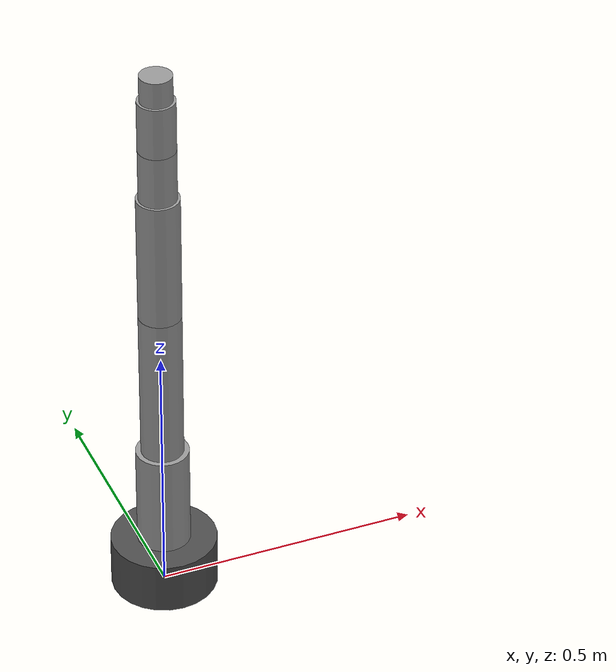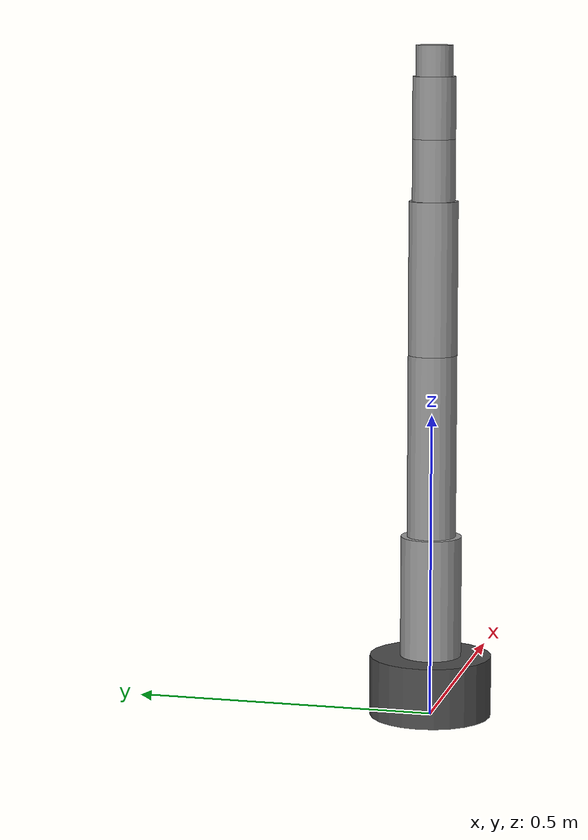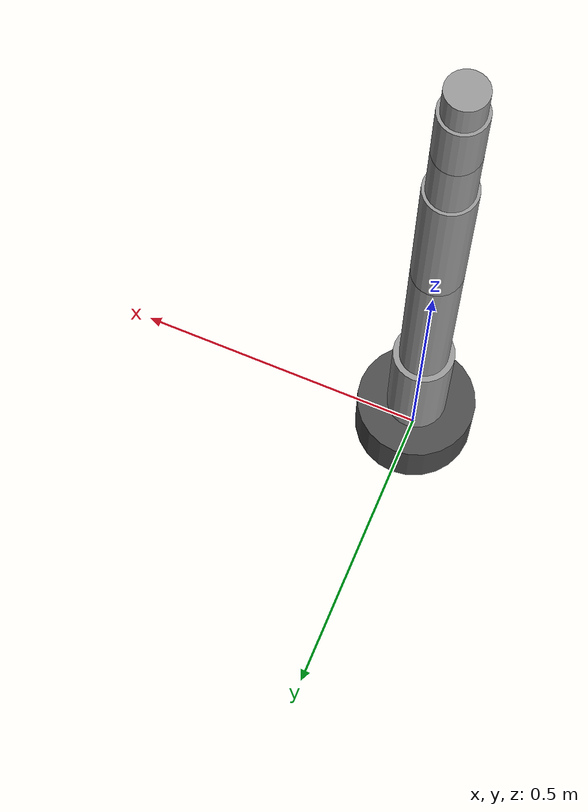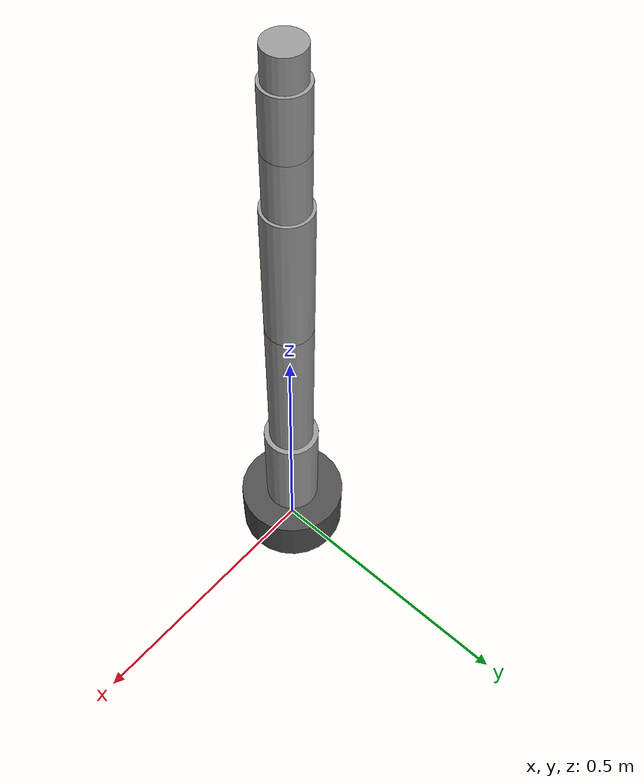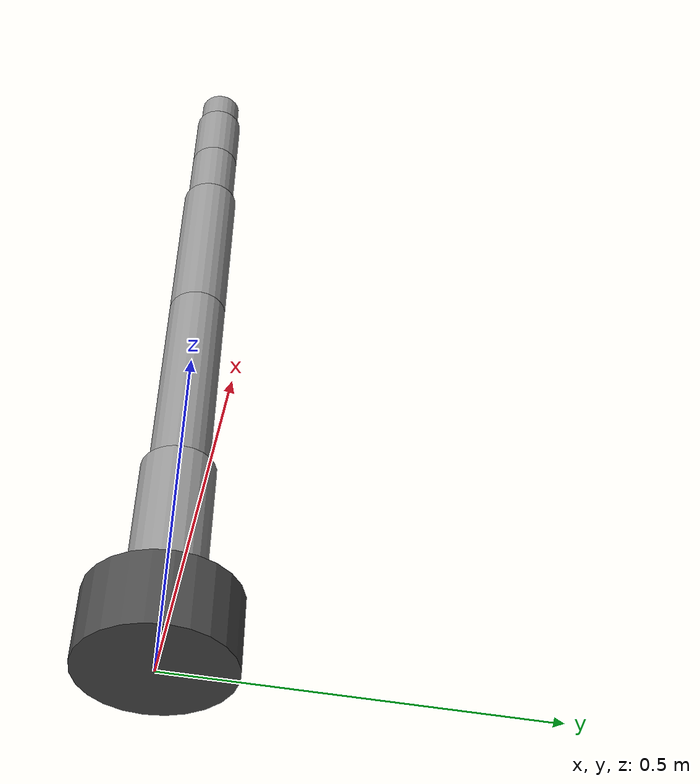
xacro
<?xml version="1.0"?>
<robot name="my_arm" xmlns:xacro="http://www.ros.org/wiki/xacro">

  <xacro:include filename="$(find my_arm_description)/urdf/arm.macro.xacro"/>

  <!-- world 是惯例的 fixed 起點(MoveIt scene 用) -->
  <link name="world"/>

  <!-- 底座(不算 DOF,fixed joint 接到 world) -->
  <joint name="world_to_base" type="fixed">
    <parent link="world"/>
    <child link="base_link"/>
    <origin xyz="0 0 0" rpy="0 0 0"/>
  </joint>

  <link name="base_link">
    <visual>
      <origin xyz="0 0 0.05" rpy="0 0 0"/>
      <geometry>
        <cylinder length="0.1" radius="0.1"/>
      </geometry>
      <material name="dark_grey">
        <color rgba="0.3 0.3 0.3 1.0"/>
      </material>
    </visual>
    <collision>
      <origin xyz="0 0 0.05" rpy="0 0 0"/>
      <geometry>
        <cylinder length="0.1" radius="0.1"/>
      </geometry>
    </collision>
    <inertial>
      <mass value="2.0"/>
      <inertia ixx="0.01" ixy="0" ixz="0" iyy="0.01" iyz="0" izz="0.01"/>
    </inertial>
  </link>

  <!-- 六個 DOF:用 macro 一次寫一個 link+joint -->
  <!--   j1: shoulder pan   (z)  -->
  <xacro:arm_link name="link_1" parent="base_link"
                  length="0.20" radius="0.05"
                  axis="0 0 1" origin_xyz="0 0 0.10"
                  lower="-3.14"  upper="3.14"/>

  <!--   j2: shoulder lift  (y)  -->
  <xacro:arm_link name="link_2" parent="link_1"
                  length="0.30" radius="0.04"
                  axis="0 1 0" origin_xyz="0 0 0.20"
                  lower="-1.57"  upper="1.57"/>

  <!--   j3: elbow          (y)  -->
  <xacro:arm_link name="link_3" parent="link_2"
                  length="0.25" radius="0.04"
                  axis="0 1 0" origin_xyz="0 0 0.30"
                  lower="-2.50"  upper="2.50"/>

  <!--   j4: wrist roll     (z)  -->
  <xacro:arm_link name="link_4" parent="link_3"
                  length="0.10" radius="0.035"
                  axis="0 0 1" origin_xyz="0 0 0.25"
                  lower="-3.14"  upper="3.14"/>

  <!--   j5: wrist pitch    (y)  -->
  <xacro:arm_link name="link_5" parent="link_4"
                  length="0.10" radius="0.035"
                  axis="0 1 0" origin_xyz="0 0 0.10"
                  lower="-1.57"  upper="1.57"/>

  <!--   j6: tool roll      (z)  -->
  <xacro:arm_link name="link_6" parent="link_5"
                  length="0.05" radius="0.03"
                  axis="0 0 1" origin_xyz="0 0 0.10"
                  lower="-3.14"  upper="3.14"/>

  <!-- tool0:習慣命名,工具(夾爪/吸盤)裝這裡 -->
  <joint name="link_6_to_tool0" type="fixed">
    <parent link="link_6"/>
    <child link="tool0"/>
    <origin xyz="0 0 0.05" rpy="0 0 0"/>
  </joint>
  <link name="tool0"/>

</robot>

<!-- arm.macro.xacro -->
<robot xmlns:xacro="http://www.ros.org/wiki/xacro">

  <xacro:macro name="arm_link"
               params="name parent length radius axis origin_xyz lower upper">

    <!-- joint:把這個 link 接到 parent -->
    <joint name="${name}_joint" type="revolute">
      <parent link="${parent}"/>
      <child link="${name}"/>
      <origin xyz="${origin_xyz}" rpy="0 0 0"/>
      <axis xyz="${axis}"/>
      <limit lower="${lower}" upper="${upper}" effort="100" velocity="1.5"/>
      <dynamics damping="0.1" friction="0.1"/>
    </joint>

    <!-- link:圓柱形 visual + collision + 慣量(MoveIt / Gazebo 都需要) -->
    <link name="${name}">
      <visual>
        <origin xyz="0 0 ${length/2}" rpy="0 0 0"/>
        <geometry>
          <cylinder length="${length}" radius="${radius}"/>
        </geometry>
        <material name="grey">
          <color rgba="0.6 0.6 0.6 1.0"/>
        </material>
      </visual>
      <collision>
        <origin xyz="0 0 ${length/2}" rpy="0 0 0"/>
        <geometry>
          <cylinder length="${length}" radius="${radius}"/>
        </geometry>
      </collision>
      <inertial>
        <origin xyz="0 0 ${length/2}" rpy="0 0 0"/>
        <mass value="1.0"/>
        <inertia
          ixx="${(1/12) * 1.0 * (3*radius*radius + length*length)}" ixy="0" ixz="0"
          iyy="${(1/12) * 1.0 * (3*radius*radius + length*length)}" iyz="0"
          izz="${(1/2)  * 1.0 * radius*radius}"/>
      </inertial>
    </link>

  </xacro:macro>

</robot>
